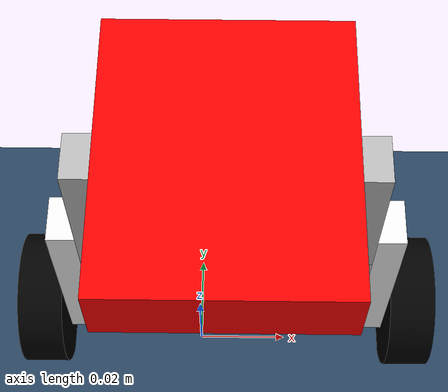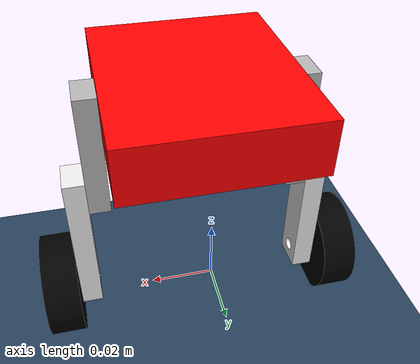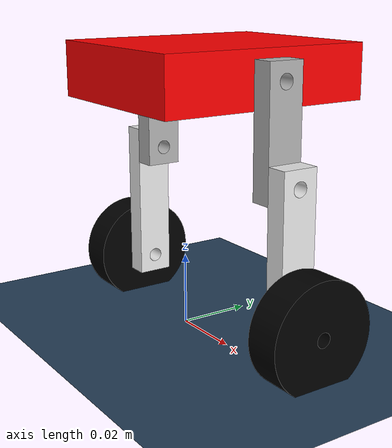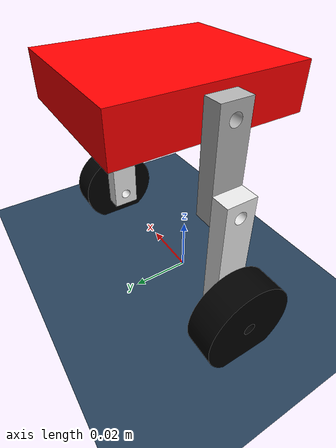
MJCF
<mujoco model="scene">
    <include file="robot.xml" />

    <visual>
        <headlight diffuse="0.6 0.6 0.6" ambient="0.3 0.3 0.3" specular="0 0 0" />
        <rgba haze="0.15 0.25 0.35 1" />
        <global azimuth="160" elevation="-20" />
    </visual>

    <asset>
        <texture type="skybox" builtin="gradient" rgb1="0.3 0.5 0.7" rgb2="0 0 0" width="512"
            height="3072" />
        <texture type="2d" name="groundplane" builtin="checker" mark="edge" rgb1="0.2 0.3 0.4"
            rgb2="0.1 0.2 0.3"
            markrgb="0.8 0.8 0.8" width="300" height="300" />
        <material name="groundplane" texture="groundplane" texuniform="true" texrepeat="5 5"
            reflectance="0.2" />
    </asset>

    <worldbody>
        <light pos="0 0 3.5" dir="0 0 -1" directional="true" />
        <geom name="floor" size="0 0 0.05" pos="0 0 0" type="plane" material="groundplane" />
    </worldbody>
</mujoco>

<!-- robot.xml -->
<!-- Generated using onshape-to-robot -->
<!-- Onshape https://cad.onshape.com/documents/d6f28038394c6695a0af51fb/w/e48a2577644550901c42c5dc/e/c11f9da44c24d4a76c2e0eb3 -->
<mujoco model="biped">
  <compiler angle="radian" meshdir="assets" autolimits="true"/>
  <option gravity="0 0 -9.81"/>
  <default>
    <default class="biped">
      <joint frictionloss="0.1" armature="0.005"/>
      <position kp="50" dampratio="1"/>
      <default class="visual">
        <geom type="mesh" contype="0" conaffinity="0" group="2"/>
      </default>
      <default class="collision">
      </default>
    </default>
  </default>
  <worldbody>
    <!-- Link body -->
    <body name="body" pos="0 0 0.07" quat="1 0 0 0" childclass="biped">
      <freejoint/>
      <inertial pos="0.0059619 0.00494356 0.00225219" mass="0.0554646" fullinertia="1.79281e-05 1.2609e-05 2.84293e-05 0 0 0"/>
      <!-- Part body -->
      <geom type="mesh" class="visual" pos="0.0059619 0.00494356 -0.00524781" quat="1 0 0 0" mesh="body" material="body_material"/>
      <geom type="mesh" class="collision" pos="0.0059619 0.00494356 -0.00524781" quat="1 0 0 0" mesh="body" material="body_material"/>
      <!-- Link femur -->
      <body name="femur" pos="0.0309619 0.00494356 0.00225219" quat="0.5 -0.5 -0.5 0.5">
        <!-- Joint from body to femur -->
        <joint axis="0 0 1" name="femur_1" type="hinge" range="-1.5707963267948966 1.5707963267948966"/>
        <inertial pos="3.07605e-18 0.0125 -0.003" mass="0.0024365" fullinertia="2.45637e-07 2.8996e-08 2.60014e-07 0 0 -3.26676e-52"/>
        <!-- Part femur -->
        <geom type="mesh" class="visual" pos="3.42538e-19 0.06 -0.017" quat="0.707107 0.707107 -0 -0" mesh="femur" material="femur_material"/>
        <geom type="mesh" class="collision" pos="3.42538e-19 0.06 -0.017" quat="0.707107 0.707107 -0 -0" mesh="femur" material="femur_material"/>
        <!-- Link tibia -->
        <body name="tibia" pos="1.67249e-18 0.025 -0.006" quat="1 0 0 0">
          <!-- Joint from femur to tibia -->
          <joint axis="0 0 1" name="tibia_1" type="hinge" range="-1.5707963267948966 1.5707963267948966"/>
          <inertial pos="1.94726e-18 0.0175 -0.003" mass="0.0031865" fullinertia="5.21176e-07 3.7496e-08 5.39552e-07 0 0 0"/>
          <!-- Part tibia -->
          <geom type="mesh" class="visual" pos="3.42538e-19 0.035 -0.011" quat="0.707107 0.707107 -0 -0" mesh="tibia" material="tibia_material"/>
          <geom type="mesh" class="collision" pos="3.42538e-19 0.035 -0.011" quat="0.707107 0.707107 -0 -0" mesh="tibia" material="tibia_material"/>
          <!-- Link wheel -->
          <body name="wheel" pos="6.31659e-19 0.035 -0.006" quat="1 0 0 0">
            <!-- Joint from tibia to wheel -->
            <joint axis="0 0 1" name="wheel_1" type="hinge" limited="false"/>
            <inertial pos="-5.15292e-19 -1.22984e-18 -0.005" mass="0.00867865" fullinertia="5.69175e-07 5.69175e-07 9.93705e-07 0 0 0"/>
            <!-- Part wheel -->
            <geom type="mesh" class="visual" pos="-5.24823e-19 0 -0.005" quat="0.707107 0.707107 -0 -0" mesh="wheel" material="wheel_material"/>
            <geom type="mesh" class="collision" pos="-5.24823e-19 0 -0.005" quat="0.707107 0.707107 -0 -0" mesh="wheel" material="wheel_material"/>
          </body>
        </body>
      </body>
      <!-- Link femur_2 -->
      <body name="femur_2" pos="-0.0190381 0.00494356 0.00225219" quat="0.5 -0.5 0.5 -0.5">
        <!-- Joint from body to femur_2 -->
        <joint axis="0 0 1" name="femur_2" type="hinge" range="-1.5707963267948966 1.5707963267948966"/>
        <inertial pos="2.56445e-18 0.0125 -0.003" mass="0.0024365" fullinertia="2.45637e-07 2.8996e-08 2.60014e-07 0 0 0"/>
        <!-- Part femur_2 -->
        <geom type="mesh" class="visual" pos="-1.69066e-19 0.06 -0.017" quat="0.707107 0.707107 -0 -0" mesh="femur" material="femur_material"/>
        <geom type="mesh" class="collision" pos="-1.69066e-19 0.06 -0.017" quat="0.707107 0.707107 -0 -0" mesh="femur" material="femur_material"/>
        <!-- Link tibia_2 -->
        <body name="tibia_2" pos="2.93527e-19 0.025 -0.006" quat="1 0 0 0">
          <!-- Joint from femur_2 to tibia_2 -->
          <joint axis="0 0 1" name="tibia_2" type="hinge" range="-1.5707963267948966 1.5707963267948966"/>
          <inertial pos="2.30301e-18 0.0175 -0.003" mass="0.0031865" fullinertia="5.21176e-07 3.7496e-08 5.39552e-07 0 0 0"/>
          <!-- Part tibia_2 -->
          <geom type="mesh" class="visual" pos="6.98296e-19 0.035 -0.011" quat="0.707107 0.707107 -0 -0" mesh="tibia" material="tibia_material"/>
          <geom type="mesh" class="collision" pos="6.98296e-19 0.035 -0.011" quat="0.707107 0.707107 -0 -0" mesh="tibia" material="tibia_material"/>
          <!-- Link wheel_2 -->
          <body name="wheel_2" pos="1.85478e-18 0.035 -0.006" quat="0 0 0 1">
            <!-- Joint from tibia_2 to wheel_2 -->
            <joint axis="0 0 1" name="wheel_2" type="hinge" limited="false"/>
            <inertial pos="1.78597e-19 -1.22984e-18 -0.005" mass="0.00867865" fullinertia="5.69175e-07 5.69175e-07 9.93705e-07 0 0 0"/>
            <!-- Part wheel_2 -->
            <geom type="mesh" class="visual" pos="1.69066e-19 0 -0.005" quat="0.707107 0.707107 -0 -0" mesh="wheel" material="wheel_material"/>
            <geom type="mesh" class="collision" pos="1.69066e-19 0 -0.005" quat="0.707107 0.707107 -0 -0" mesh="wheel" material="wheel_material"/>
          </body>
        </body>
      </body>
    </body>
  </worldbody>
  <asset>
    <mesh file="tibia.stl"/>
    <mesh file="wheel.stl"/>
    <mesh file="body.stl"/>
    <mesh file="femur.stl"/>
    <material name="body_material" rgba="1 0 0 1"/>
    <material name="femur_material" rgba="0.701961 0.701961 0.701961 1"/>
    <material name="tibia_material" rgba="0.917647 0.917647 0.917647 1"/>
    <material name="wheel_material" rgba="0 0 0 1"/>
  </asset>
  <actuator>
    <position class="biped" name="femur_1" joint="femur_1" inheritrange="1"/>
    <position class="biped" name="tibia_1" joint="tibia_1" inheritrange="1"/>
    <velocity name="wheel_1" joint="wheel_1" kv="1.0"/>
    <position class="biped" name="femur_2" joint="femur_2" inheritrange="1"/>
    <position class="biped" name="tibia_2" joint="tibia_2" inheritrange="1"/>
    <velocity name="wheel_2" joint="wheel_2" kv="1.0"/>
  </actuator>
  <equality/>
</mujoco>
